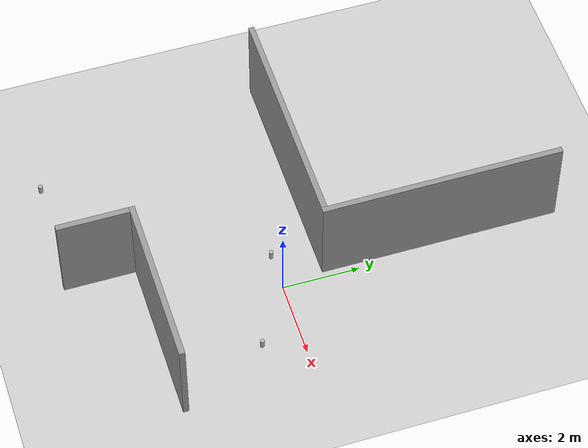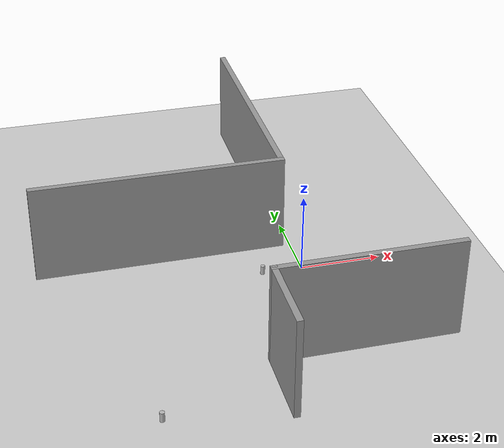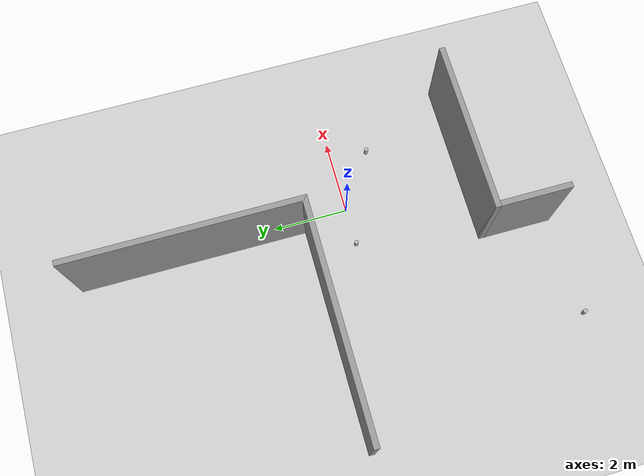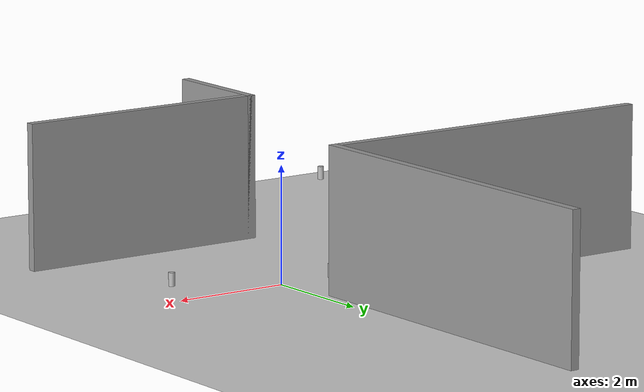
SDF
<sdf version="1.6">
 <world name="demo_world">
  <light name="sun" type="directional">
   <pose>0 0 10 0 -0 0</pose>
   <diffuse>0.8 0.8 0.8 1</diffuse>
   <specular>0.2 0.2 0.2 1</specular>
   <attenuation>
    <range>1000</range>
    <constant>0.9</constant>
    <linear>0.01</linear>
    <quadratic>0.001</quadratic>
   </attenuation>
   <direction>-0.5 0.1 -0.9</direction>
  </light>
  <model name="ground_plane">
   <static>1</static>
   <link name="link">
    <collision name="collision">
     <geometry><plane><normal>0 0 1</normal><size>100 100</size></plane></geometry>
     <surface>
      <contact><collide_bitmask>65535</collide_bitmask></contact>
      <friction><ode><mu>100</mu><mu2>50</mu2></ode></friction>
     </surface>
    </collision>
    <visual name="visual">
     <cast_shadows>0</cast_shadows>
     <geometry><plane><normal>0 0 1</normal><size>100 100</size></plane></geometry>
     <material>
      <script><uri>file://media/materials/scripts/gazebo.material</uri><name>Gazebo/Grey</name></script>
     </material>
    </visual>
   </link>
  </model>
  <gravity>0 0 -9.8</gravity>
  <magnetic_field>6e-06 2.3e-05 -4.2e-05</magnetic_field>
  <atmosphere type="adiabatic"/>
  <physics name="default_physics" default="0" type="ode">
   <max_step_size>0.001</max_step_size>
   <real_time_factor>1</real_time_factor>
   <real_time_update_rate>1000</real_time_update_rate>
  </physics>
  <scene><ambient>0.4 0.4 0.4 1</ambient><background>0.7 0.7 0.7 1</background><shadows>1</shadows></scene>
  <audio><device>default</device></audio>
  <spherical_coordinates>
   <surface_model>EARTH_WGS84</surface_model>
   <latitude_deg>0</latitude_deg>
   <longitude_deg>0</longitude_deg>
   <elevation>0</elevation>
   <heading_deg>90</heading_deg>
  </spherical_coordinates>
  <model name="beer">
   <link name="link">
    <pose>0 0 0.115 0 -0 0</pose>
    <inertial>
     <mass>0.39</mass>
     <inertia><ixx>0.00058</ixx><ixy>0</ixy><ixz>0</ixz><iyy>0.00058</iyy><iyz>0</iyz><izz>0.00019</izz></inertia>
    </inertial>
    <collision name="collision">
     <geometry><cylinder><radius>0.055</radius><length>0.23</length></cylinder></geometry>
    </collision>
    <visual name="visual">
     <geometry><cylinder><radius>0.055</radius><length>0.23</length></cylinder></geometry>
     <material>
      <script>
       <uri>model://beer/materials/scripts</uri>
       <uri>model://beer/materials/textures</uri>
       <name>Beer/Diffuse</name>
      </script>
     </material>
    </visual>
   </link>
   <pose>-4.47 -5.08 0.4 0 -0 0</pose>
  </model>
  <model name="beer1">
   <link name="link">
    <pose>0 0 0.115 0 -0 0</pose>
    <inertial>
     <mass>0.39</mass>
     <inertia><ixx>0.00058</ixx><ixy>0</ixy><ixz>0</ixz><iyy>0.00058</iyy><iyz>0</iyz><izz>0.00019</izz></inertia>
    </inertial>
    <collision name="collision">
     <geometry><cylinder><radius>0.055</radius><length>0.23</length></cylinder></geometry>
    </collision>
    <visual name="visual">
     <geometry><cylinder><radius>0.055</radius><length>0.23</length></cylinder></geometry>
     <material>
      <script>
       <uri>model://beer/materials/scripts</uri>
       <uri>model://beer/materials/textures</uri>
       <name>Beer/Diffuse</name>
      </script>
     </material>
    </visual>
   </link>
   <pose>-1 0 0 0 -0 0</pose>
  </model>
  <model name="beer2">
   <link name="link">
    <pose>0 0 0.115 0 -0 0</pose>
    <inertial>
     <mass>0.39</mass>
     <inertia><ixx>0.00058</ixx><ixy>0</ixy><ixz>0</ixz><iyy>0.00058</iyy><iyz>0</iyz><izz>0.00019</izz></inertia>
    </inertial>
    <collision name="collision">
     <geometry><cylinder><radius>0.055</radius><length>0.23</length></cylinder></geometry>
    </collision>
    <visual name="visual">
     <geometry><cylinder><radius>0.055</radius><length>0.23</length></cylinder></geometry>
     <material>
      <script>
       <uri>model://beer/materials/scripts</uri>
       <uri>model://beer/materials/textures</uri>
       <name>Beer/Diffuse</name>
      </script>
     </material>
    </visual>
   </link>
   <pose>1.5 -1 0 0 -0 0</pose>
  </model>
  <model name="Untitled">
   <pose>-1.82907 1.05465 0 0 -0 0</pose>
   <link name="Wall_0">
    <collision name="Wall_0_Collision">
     <geometry><box><size>6.25 0.15 2.5</size></box></geometry>
     <pose>0 0 1.25 0 -0 0</pose>
    </collision>
    <visual name="Wall_0_Visual">
     <pose>0 0 1.25 0 -0 0</pose>
     <geometry><box><size>6.25 0.15 2.5</size></box></geometry>
     <material>
      <script><uri>file://media/materials/scripts/gazebo.material</uri><name>Gazebo/Grey</name></script>
      <ambient>1 1 1 1</ambient>
     </material>
     <meta><layer>0</layer></meta>
    </visual>
    <pose>-1.4632 0.105746 0 0 -0 3.14159</pose>
   </link>
   <link name="Wall_2">
    <collision name="Wall_2_Collision">
     <geometry><box><size>4.5 0.15 2.5</size></box></geometry>
     <pose>0 0 1.25 0 -0 0</pose>
    </collision>
    <visual name="Wall_2_Visual">
     <pose>0 0 1.25 0 -0 0</pose>
     <geometry><box><size>4.5 0.15 2.5</size></box></geometry>
     <material>
      <script><uri>file://media/materials/scripts/gazebo.material</uri><name>Gazebo/Grey</name></script>
      <ambient>1 1 1 1</ambient>
     </material>
     <meta><layer>0</layer></meta>
    </visual>
    <pose>2.3382 -4.35575 0 0 -0 0</pose>
   </link>
   <link name="Wall_4">
    <collision name="Wall_4_Collision">
     <geometry><box><size>2 0.15 2.5</size></box></geometry>
     <pose>0 0 1.25 0 -0 0</pose>
    </collision>
    <visual name="Wall_4_Visual">
     <pose>0 0 1.25 0 -0 0</pose>
     <geometry><box><size>2 0.15 2.5</size></box></geometry>
     <material>
      <script><uri>file://media/materials/scripts/gazebo.material</uri><name>Gazebo/Grey</name></script>
      <ambient>1 1 1 1</ambient>
     </material>
     <meta><layer>0</layer></meta>
    </visual>
    <pose>0.163197 -5.28075 0 0 -0 -1.5708</pose>
   </link>
   <link name="Wall_6">
    <collision name="Wall_6_Collision">
     <geometry><box><size>6.25 0.15 2.5</size></box></geometry>
     <pose>0 0 1.25 0 -0 0</pose>
    </collision>
    <visual name="Wall_6_Visual">
     <pose>0 0 1.25 0 -0 0</pose>
     <geometry><box><size>6.25 0.15 2.5</size></box></geometry>
     <material>
      <script><uri>file://media/materials/scripts/gazebo.material</uri><name>Gazebo/Grey</name></script>
      <ambient>1 1 1 1</ambient>
     </material>
     <meta><layer>0</layer></meta>
    </visual>
    <pose>1.5868 3.15575 0 0 -0 1.5708</pose>
   </link>
   <static>1</static>
  </model>
 </world>
</sdf>
